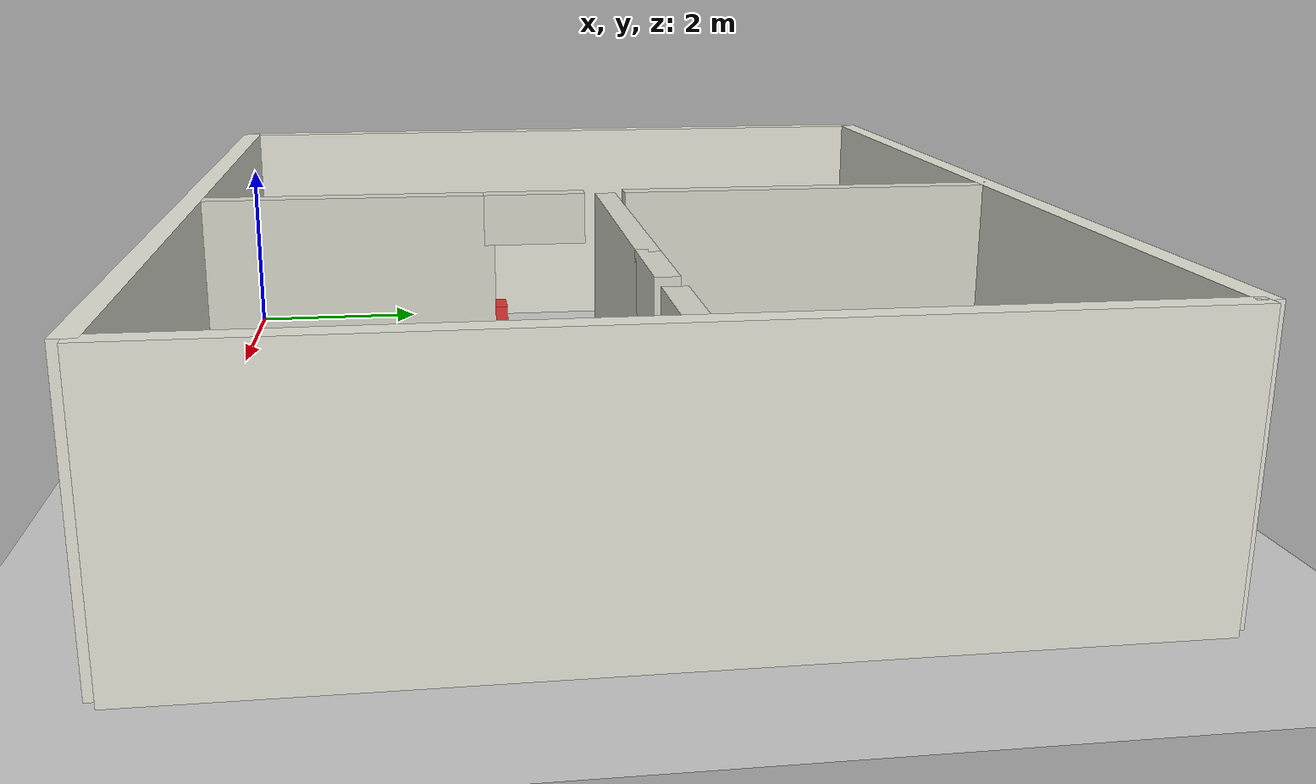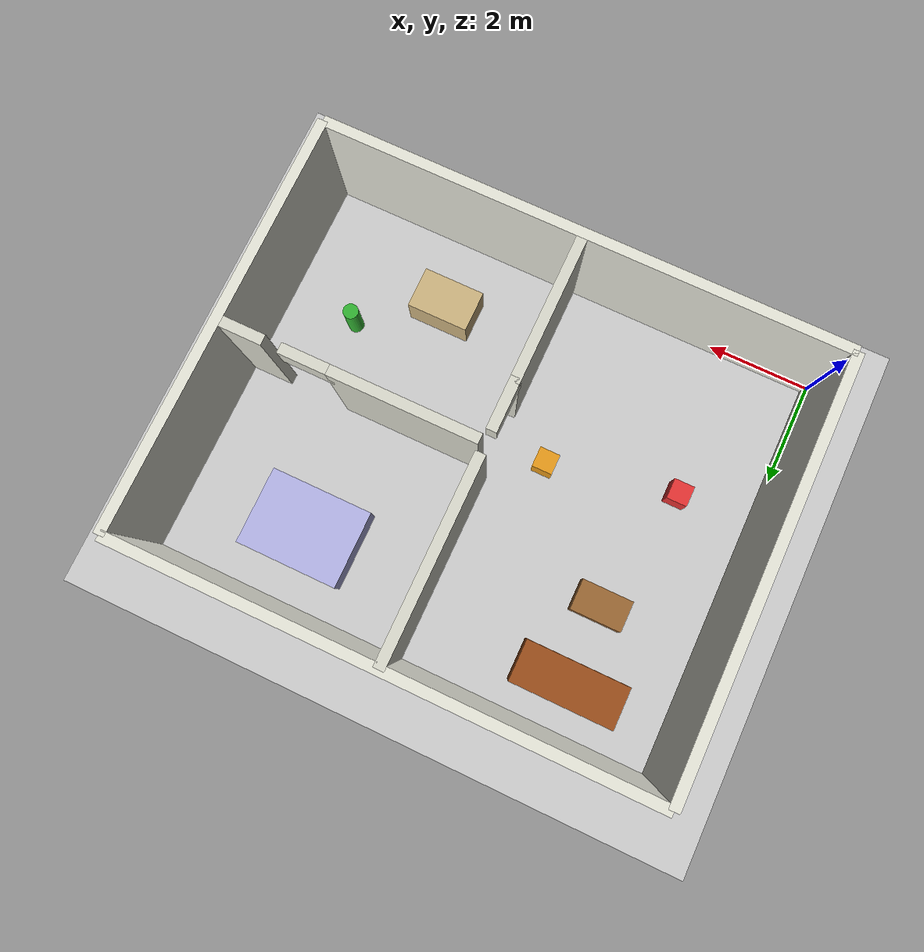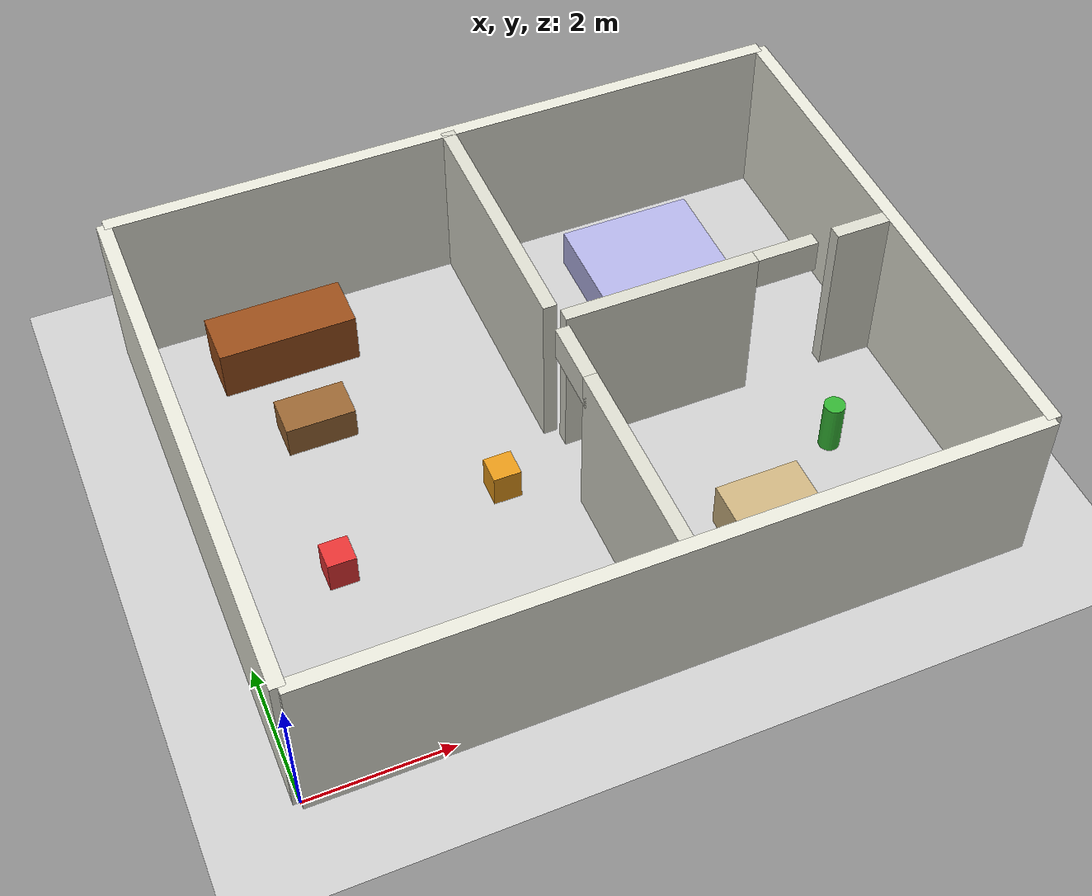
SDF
<?xml version="1.0" ?>
<!--
  House World for Ground Robot Indoor Navigation (Gazebo Harmonic / SDF 1.9)
  Layout: Living room, kitchen, bedroom, hallway with doors.
  Suitable for testing SLAM + Nav2 autonomous navigation.
-->
<sdf version="1.9">
  <world name="house">

    <!-- ── Physics ─────────────────────────────────────────────────────── -->
    <physics name="default" type="dart">
      <max_step_size>0.004</max_step_size>
      <real_time_factor>1</real_time_factor>
    </physics>

    <!-- ── Required plugins ────────────────────────────────────────────── -->
    <plugin filename="gz-sim-physics-system"
            name="gz::sim::systems::Physics"/>
    <plugin filename="gz-sim-user-commands-system"
            name="gz::sim::systems::UserCommands"/>
    <plugin filename="gz-sim-scene-broadcaster-system"
            name="gz::sim::systems::SceneBroadcaster"/>
    <plugin filename="gz-sim-sensors-system"
            name="gz::sim::systems::Sensors">
      <render_engine>ogre2</render_engine>
    </plugin>
    <plugin filename="gz-sim-contact-system"
            name="gz::sim::systems::Contact"/>
    <!-- Pose publisher for robot pose to ROS TF -->
    <plugin filename="gz-sim-pose-publisher-system"
            name="gz::sim::systems::PosePublisher">
      <publish>true</publish>
      <publish_intra_process>true</publish_intra_process>
    </plugin>

    <!-- ── Lighting ─────────────────────────────────────────────────────── -->
    <light type="directional" name="sun">
      <cast_shadows>true</cast_shadows>
      <pose>0 0 10 0 0 0</pose>
      <diffuse>0.8 0.8 0.8 1</diffuse>
      <specular>0.2 0.2 0.2 1</specular>
      <direction>-0.5 0.1 -0.9</direction>
    </light>

    <!-- ── Ground plane ─────────────────────────────────────────────────── -->
    <model name="ground_plane">
      <static>true</static>
      <link name="link">
        <collision name="collision">
          <geometry>
            <plane>
              <normal>0 0 1</normal>
              <size>100 100</size>
            </plane>
          </geometry>
          <surface>
            <friction>
              <ode><mu>100</mu><mu2>50</mu2></ode>
            </friction>
          </surface>
        </collision>
        <visual name="visual">
          <geometry>
            <plane>
              <normal>0 0 1</normal>
              <size>100 100</size>
            </plane>
          </geometry>
          <material>
            <ambient>0.8 0.8 0.8 1</ambient>
            <diffuse>0.8 0.8 0.8 1</diffuse>
          </material>
        </visual>
      </link>
    </model>

    <!-- Wall macro defined inline via repeated models -->

    <!-- ── OUTER WALLS ──────────────────────────────────────────────────── -->

    <!-- South outer wall -->
    <model name="wall_south">
      <static>true</static>
      <pose>5 0 1.25 0 0 0</pose>
      <link name="link">
        <collision name="collision">
          <geometry><box><size>10 0.2 2.5</size></box></geometry>
        </collision>
        <visual name="visual">
          <geometry><box><size>10 0.2 2.5</size></box></geometry>
          <material><ambient>0.9 0.9 0.85 1</ambient><diffuse>0.9 0.9 0.85 1</diffuse></material>
        </visual>
      </link>
    </model>

    <!-- North outer wall -->
    <model name="wall_north">
      <static>true</static>
      <pose>5 8 1.25 0 0 0</pose>
      <link name="link">
        <collision name="collision">
          <geometry><box><size>10 0.2 2.5</size></box></geometry>
        </collision>
        <visual name="visual">
          <geometry><box><size>10 0.2 2.5</size></box></geometry>
          <material><ambient>0.9 0.9 0.85 1</ambient><diffuse>0.9 0.9 0.85 1</diffuse></material>
        </visual>
      </link>
    </model>

    <!-- West outer wall -->
    <model name="wall_west">
      <static>true</static>
      <pose>0 4 1.25 0 0 0</pose>
      <link name="link">
        <collision name="collision">
          <geometry><box><size>0.2 8 2.5</size></box></geometry>
        </collision>
        <visual name="visual">
          <geometry><box><size>0.2 8 2.5</size></box></geometry>
          <material><ambient>0.9 0.9 0.85 1</ambient><diffuse>0.9 0.9 0.85 1</diffuse></material>
        </visual>
      </link>
    </model>

    <!-- East outer wall -->
    <model name="wall_east">
      <static>true</static>
      <pose>10 4 1.25 0 0 0</pose>
      <link name="link">
        <collision name="collision">
          <geometry><box><size>0.2 8 2.5</size></box></geometry>
        </collision>
        <visual name="visual">
          <geometry><box><size>0.2 8 2.5</size></box></geometry>
          <material><ambient>0.9 0.9 0.85 1</ambient><diffuse>0.9 0.9 0.85 1</diffuse></material>
        </visual>
      </link>
    </model>

    <!-- ── INNER WALLS ──────────────────────────────────────────────────── -->

    <!-- Dividing wall between living room and kitchen/bedroom (with door gap) -->
    <!-- Lower section (south) -->
    <model name="inner_wall_v_south">
      <static>true</static>
      <pose>5 1.5 1.25 0 0 0</pose>
      <link name="link">
        <collision name="collision">
          <geometry><box><size>0.2 2.8 2.5</size></box></geometry>
        </collision>
        <visual name="visual">
          <geometry><box><size>0.2 2.8 2.5</size></box></geometry>
          <material><ambient>0.85 0.85 0.8 1</ambient><diffuse>0.85 0.85 0.8 1</diffuse></material>
        </visual>
      </link>
    </model>

    <!-- Door header above door gap (y=2.8 to y=3.8, height 2.0-2.5) -->
    <model name="inner_wall_v_door_header">
      <static>true</static>
      <pose>5 3.3 2.25 0 0 0</pose>
      <link name="link">
        <collision name="collision">
          <geometry><box><size>0.2 1.0 0.5</size></box></geometry>
        </collision>
        <visual name="visual">
          <geometry><box><size>0.2 1.0 0.5</size></box></geometry>
          <material><ambient>0.85 0.85 0.8 1</ambient><diffuse>0.85 0.85 0.8 1</diffuse></material>
        </visual>
      </link>
    </model>

    <!-- Upper section (north of door) -->
    <model name="inner_wall_v_north">
      <static>true</static>
      <pose>5 6.1 1.25 0 0 0</pose>
      <link name="link">
        <collision name="collision">
          <geometry><box><size>0.2 3.8 2.5</size></box></geometry>
        </collision>
        <visual name="visual">
          <geometry><box><size>0.2 3.8 2.5</size></box></geometry>
          <material><ambient>0.85 0.85 0.8 1</ambient><diffuse>0.85 0.85 0.8 1</diffuse></material>
        </visual>
      </link>
    </model>

    <!-- Horizontal divider between kitchen and bedroom (with door gap) -->
    <model name="inner_wall_h_west">
      <static>true</static>
      <pose>6.5 4 1.25 0 0 0</pose>
      <link name="link">
        <collision name="collision">
          <geometry><box><size>2.8 0.2 2.5</size></box></geometry>
        </collision>
        <visual name="visual">
          <geometry><box><size>2.8 0.2 2.5</size></box></geometry>
          <material><ambient>0.85 0.85 0.8 1</ambient><diffuse>0.85 0.85 0.8 1</diffuse></material>
        </visual>
      </link>
    </model>

    <!-- Door header for kitchen/bedroom divider -->
    <model name="inner_wall_h_door_header">
      <static>true</static>
      <pose>8.3 4 2.25 0 0 0</pose>
      <link name="link">
        <collision name="collision">
          <geometry><box><size>1.0 0.2 0.5</size></box></geometry>
        </collision>
        <visual name="visual">
          <geometry><box><size>1.0 0.2 0.5</size></box></geometry>
          <material><ambient>0.85 0.85 0.8 1</ambient><diffuse>0.85 0.85 0.8 1</diffuse></material>
        </visual>
      </link>
    </model>

    <model name="inner_wall_h_east">
      <static>true</static>
      <pose>9.5 4 1.25 0 0 0</pose>
      <link name="link">
        <collision name="collision">
          <geometry><box><size>0.8 0.2 2.5</size></box></geometry>
        </collision>
        <visual name="visual">
          <geometry><box><size>0.8 0.2 2.5</size></box></geometry>
          <material><ambient>0.85 0.85 0.8 1</ambient><diffuse>0.85 0.85 0.8 1</diffuse></material>
        </visual>
      </link>
    </model>

    <!-- ── FURNITURE ─────────────────────────────────────────────────────── -->

    <!-- Sofa (Living Room) -->
    <model name="sofa">
      <static>true</static>
      <pose>2 7 0.4 0 0 0</pose>
      <link name="link">
        <collision name="collision">
          <geometry><box><size>2 0.8 0.8</size></box></geometry>
        </collision>
        <visual name="visual">
          <geometry><box><size>2 0.8 0.8</size></box></geometry>
          <material><ambient>0.4 0.2 0.1 1</ambient><diffuse>0.6 0.3 0.1 1</diffuse></material>
        </visual>
      </link>
    </model>

    <!-- Coffee Table (Living Room) -->
    <model name="coffee_table">
      <static>true</static>
      <pose>2 5.5 0.25 0 0 0</pose>
      <link name="link">
        <collision name="collision">
          <geometry><box><size>1.0 0.6 0.5</size></box></geometry>
        </collision>
        <visual name="visual">
          <geometry><box><size>1.0 0.6 0.5</size></box></geometry>
          <material><ambient>0.5 0.35 0.15 1</ambient><diffuse>0.6 0.4 0.2 1</diffuse></material>
        </visual>
      </link>
    </model>

    <!-- Kitchen Table -->
    <model name="kitchen_table">
      <static>true</static>
      <pose>7 1.5 0.35 0 0 0</pose>
      <link name="link">
        <collision name="collision">
          <geometry><box><size>1.2 0.8 0.7</size></box></geometry>
        </collision>
        <visual name="visual">
          <geometry><box><size>1.2 0.8 0.7</size></box></geometry>
          <material><ambient>0.8 0.7 0.5 1</ambient><diffuse>0.8 0.7 0.5 1</diffuse></material>
        </visual>
      </link>
    </model>

    <!-- Bed (Bedroom) -->
    <model name="bed">
      <static>true</static>
      <pose>7.5 6.5 0.3 0 0 0</pose>
      <link name="link">
        <collision name="collision">
          <geometry><box><size>2 1.5 0.6</size></box></geometry>
        </collision>
        <visual name="visual">
          <geometry><box><size>2 1.5 0.6</size></box></geometry>
          <material><ambient>0.8 0.8 1 1</ambient><diffuse>0.7 0.7 0.9 1</diffuse></material>
        </visual>
      </link>
    </model>

    <!-- ── OBSTACLES (dynamic navigation challenge) ───────────────────── -->

    <!-- Box obstacle in living room -->
    <model name="obstacle_box_1">
      <static>true</static>
      <pose>1.5 3 0.25 0 0 0</pose>
      <link name="link">
        <collision name="collision">
          <geometry><box><size>0.4 0.4 0.5</size></box></geometry>
        </collision>
        <visual name="visual">
          <geometry><box><size>0.4 0.4 0.5</size></box></geometry>
          <material><ambient>0.8 0.3 0.3 1</ambient><diffuse>0.9 0.2 0.2 1</diffuse></material>
        </visual>
      </link>
    </model>

    <!-- Box obstacle in hallway area -->
    <model name="obstacle_box_2">
      <static>true</static>
      <pose>4.0 3.5 0.25 0 0 0</pose>
      <link name="link">
        <collision name="collision">
          <geometry><box><size>0.4 0.4 0.5</size></box></geometry>
        </collision>
        <visual name="visual">
          <geometry><box><size>0.4 0.4 0.5</size></box></geometry>
          <material><ambient>0.8 0.5 0.1 1</ambient><diffuse>0.9 0.6 0.1 1</diffuse></material>
        </visual>
      </link>
    </model>

    <!-- Cylinder obstacle in kitchen -->
    <model name="obstacle_cylinder_1">
      <static>true</static>
      <pose>8.5 2.5 0.4 0 0 0</pose>
      <link name="link">
        <collision name="collision">
          <geometry><cylinder><radius>0.15</radius><length>0.8</length></cylinder></geometry>
        </collision>
        <visual name="visual">
          <geometry><cylinder><radius>0.15</radius><length>0.8</length></cylinder></geometry>
          <material><ambient>0.2 0.6 0.2 1</ambient><diffuse>0.2 0.7 0.2 1</diffuse></material>
        </visual>
      </link>
    </model>

  </world>
</sdf>
